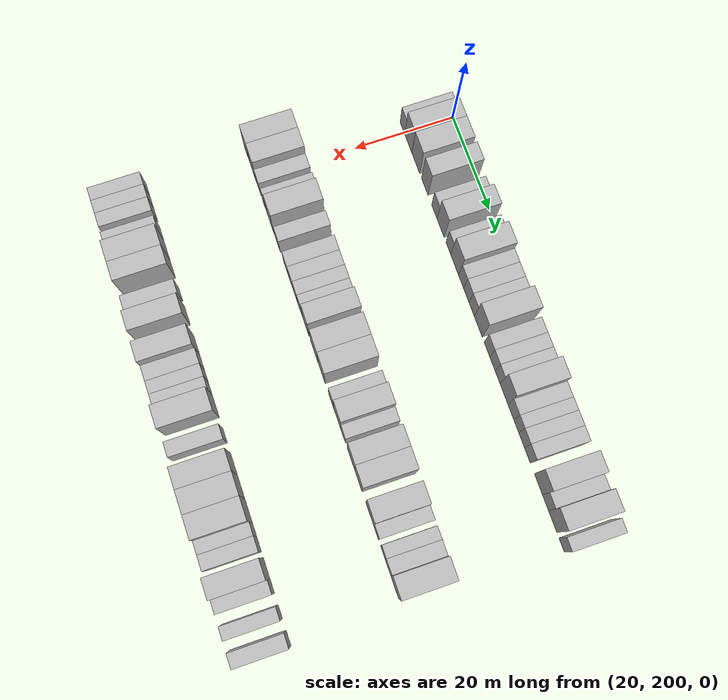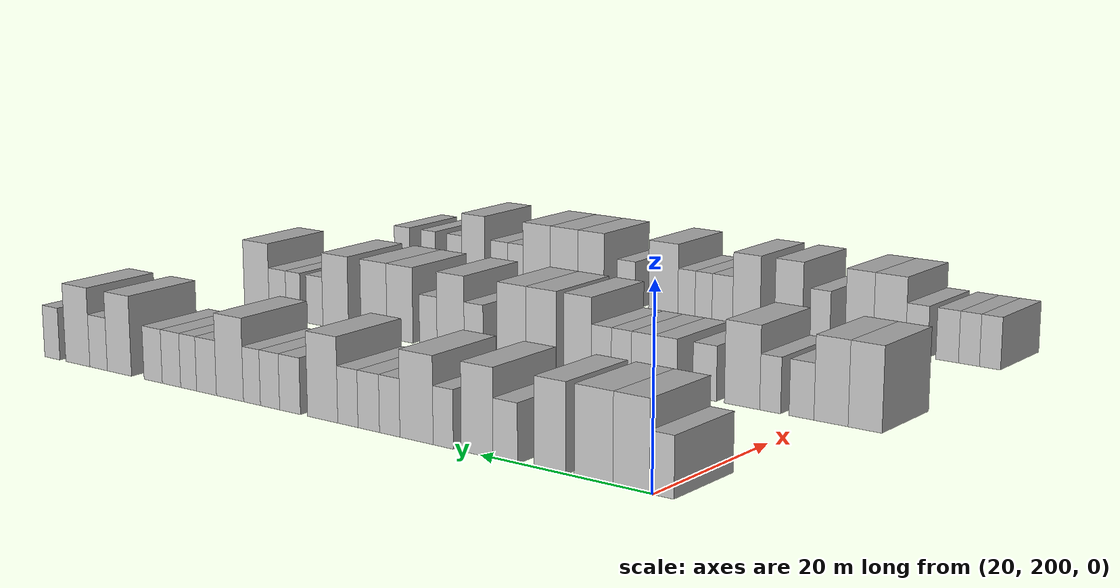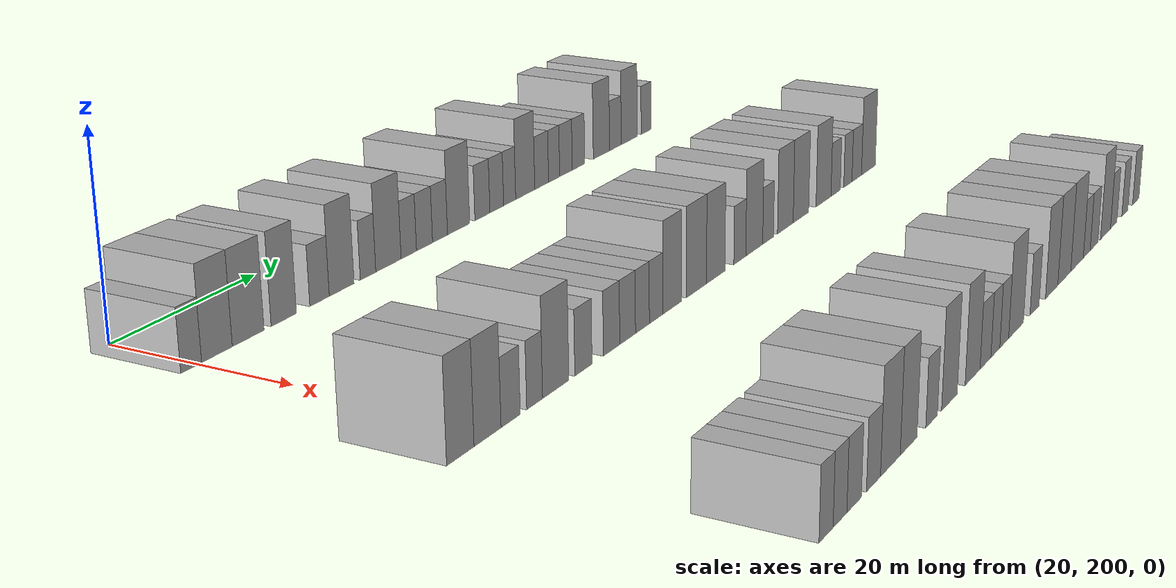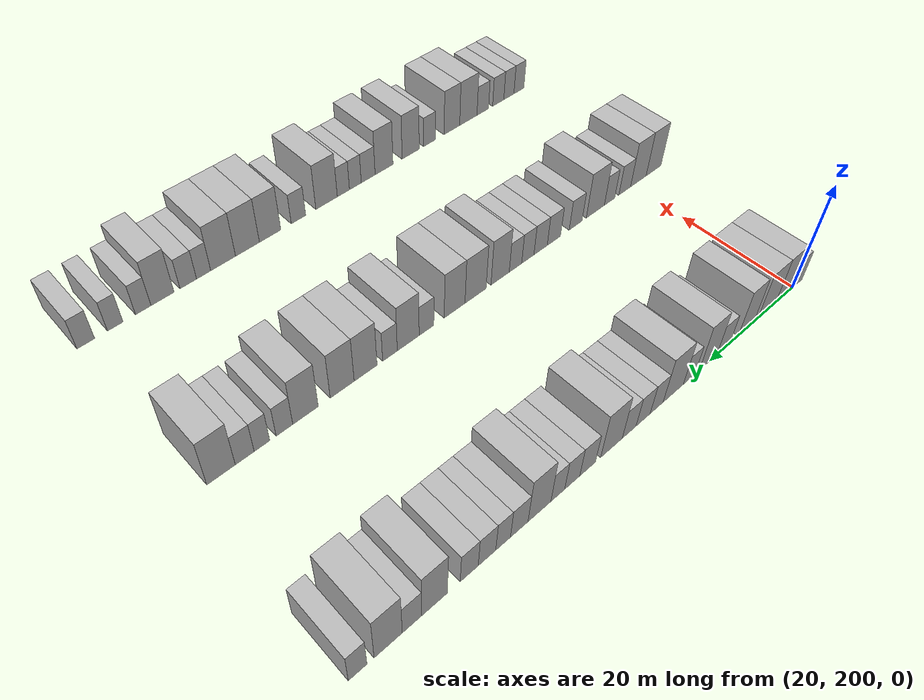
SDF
<sdf version="1.6">
 <world name="default">
  <model name="building_119">
   <static>1</static>
   <pose>25.0000 199.0054 0 0.000000 0.000000 0.000000</pose>
   <link name="link">
    <pose>0 0 3.00 0 0 0</pose>
    <collision name="collision"><geometry><box><size>10.0000 2.6788 6.0000</size></box></geometry></collision>
    <visual name="visual">
     <cast_shadows>0</cast_shadows>
     <geometry><box><size>10.0000 2.6788 6.0000</size></box></geometry>
     <material>
      <script>
       <uri>model://HANNAS_wall/materials/scripts</uri>
       <uri>model://HANNAS_wall/materials/textures</uri>
       <name>vrc/HANNAS_wall</name>
      </script>
     </material>
    </visual>
   </link>
  </model>
  <model name="building_120">
   <static>1</static>
   <pose>25.0000 202.3844 0 0.000000 0.000000 0.000000</pose>
   <link name="link">
    <pose>0 0 4.50 0 0 0</pose>
    <collision name="collision"><geometry><box><size>10.0000 4.0792 9.0000</size></box></geometry></collision>
    <visual name="visual">
     <cast_shadows>0</cast_shadows>
     <geometry><box><size>10.0000 4.0792 9.0000</size></box></geometry>
     <material>
      <script>
       <uri>model://HANNAS_wall/materials/scripts</uri>
       <uri>model://HANNAS_wall/materials/textures</uri>
       <name>vrc/HANNAS_wall</name>
      </script>
     </material>
    </visual>
   </link>
  </model>
  <model name="building_121">
   <static>1</static>
   <pose>25.0000 206.6233 0 0.000000 0.000000 0.000000</pose>
   <link name="link">
    <pose>0 0 4.50 0 0 0</pose>
    <collision name="collision"><geometry><box><size>10.0000 4.3986 9.0000</size></box></geometry></collision>
    <visual name="visual">
     <cast_shadows>0</cast_shadows>
     <geometry><box><size>10.0000 4.3986 9.0000</size></box></geometry>
     <material>
      <script>
       <uri>model://HANNAS_wall/materials/scripts</uri>
       <uri>model://HANNAS_wall/materials/textures</uri>
       <name>vrc/HANNAS_wall</name>
      </script>
     </material>
    </visual>
   </link>
  </model>
  <model name="building_122">
   <static>1</static>
   <pose>25.0000 211.6643 0 0.000000 0.000000 0.000000</pose>
   <link name="link">
    <pose>0 0 4.50 0 0 0</pose>
    <collision name="collision"><geometry><box><size>10.0000 3.6834 9.0000</size></box></geometry></collision>
    <visual name="visual">
     <cast_shadows>0</cast_shadows>
     <geometry><box><size>10.0000 3.6834 9.0000</size></box></geometry>
     <material>
      <script>
       <uri>model://HANNAS_wall/materials/scripts</uri>
       <uri>model://HANNAS_wall/materials/textures</uri>
       <name>vrc/HANNAS_wall</name>
      </script>
     </material>
    </visual>
   </link>
  </model>
  <model name="building_123">
   <static>1</static>
   <pose>25.0000 216.9936 0 0.000000 0.000000 0.000000</pose>
   <link name="link">
    <pose>0 0 3.00 0 0 0</pose>
    <collision name="collision"><geometry><box><size>10.0000 2.9752 6.0000</size></box></geometry></collision>
    <visual name="visual">
     <cast_shadows>0</cast_shadows>
     <geometry><box><size>10.0000 2.9752 6.0000</size></box></geometry>
     <material>
      <script>
       <uri>model://HANNAS_wall/materials/scripts</uri>
       <uri>model://HANNAS_wall/materials/textures</uri>
       <name>vrc/HANNAS_wall</name>
      </script>
     </material>
    </visual>
   </link>
  </model>
  <model name="building_124">
   <static>1</static>
   <pose>25.0000 220.4376 0 0.000000 0.000000 0.000000</pose>
   <link name="link">
    <pose>0 0 4.50 0 0 0</pose>
    <collision name="collision"><geometry><box><size>10.0000 3.9128 9.0000</size></box></geometry></collision>
    <visual name="visual">
     <cast_shadows>0</cast_shadows>
     <geometry><box><size>10.0000 3.9128 9.0000</size></box></geometry>
     <material>
      <script>
       <uri>model://HANNAS_wall/materials/scripts</uri>
       <uri>model://HANNAS_wall/materials/textures</uri>
       <name>vrc/HANNAS_wall</name>
      </script>
     </material>
    </visual>
   </link>
  </model>
  <model name="building_125">
   <static>1</static>
   <pose>25.0000 224.6682 0 0.000000 0.000000 0.000000</pose>
   <link name="link">
    <pose>0 0 3.00 0 0 0</pose>
    <collision name="collision"><geometry><box><size>10.0000 2.5483 6.0000</size></box></geometry></collision>
    <visual name="visual">
     <cast_shadows>0</cast_shadows>
     <geometry><box><size>10.0000 2.5483 6.0000</size></box></geometry>
     <material>
      <script>
       <uri>model://HANNAS_wall/materials/scripts</uri>
       <uri>model://HANNAS_wall/materials/textures</uri>
       <name>vrc/HANNAS_wall</name>
      </script>
     </material>
    </visual>
   </link>
  </model>
  <model name="building_126">
   <static>1</static>
   <pose>25.0000 228.0865 0 0.000000 0.000000 0.000000</pose>
   <link name="link">
    <pose>0 0 4.50 0 0 0</pose>
    <collision name="collision"><geometry><box><size>10.0000 4.2883 9.0000</size></box></geometry></collision>
    <visual name="visual">
     <cast_shadows>0</cast_shadows>
     <geometry><box><size>10.0000 4.2883 9.0000</size></box></geometry>
     <material>
      <script>
       <uri>model://HANNAS_wall/materials/scripts</uri>
       <uri>model://HANNAS_wall/materials/textures</uri>
       <name>vrc/HANNAS_wall</name>
      </script>
     </material>
    </visual>
   </link>
  </model>
  <model name="building_127">
   <static>1</static>
   <pose>25.0000 231.5767 0 0.000000 0.000000 0.000000</pose>
   <link name="link">
    <pose>0 0 3.00 0 0 0</pose>
    <collision name="collision"><geometry><box><size>10.0000 2.6921 6.0000</size></box></geometry></collision>
    <visual name="visual">
     <cast_shadows>0</cast_shadows>
     <geometry><box><size>10.0000 2.6921 6.0000</size></box></geometry>
     <material>
      <script>
       <uri>model://HANNAS_wall/materials/scripts</uri>
       <uri>model://HANNAS_wall/materials/textures</uri>
       <name>vrc/HANNAS_wall</name>
      </script>
     </material>
    </visual>
   </link>
  </model>
  <model name="building_128">
   <static>1</static>
   <pose>25.0000 234.3585 0 0.000000 0.000000 0.000000</pose>
   <link name="link">
    <pose>0 0 3.00 0 0 0</pose>
    <collision name="collision"><geometry><box><size>10.0000 2.8716 6.0000</size></box></geometry></collision>
    <visual name="visual">
     <cast_shadows>0</cast_shadows>
     <geometry><box><size>10.0000 2.8716 6.0000</size></box></geometry>
     <material>
      <script>
       <uri>model://HANNAS_wall/materials/scripts</uri>
       <uri>model://HANNAS_wall/materials/textures</uri>
       <name>vrc/HANNAS_wall</name>
      </script>
     </material>
    </visual>
   </link>
  </model>
  <model name="building_129">
   <static>1</static>
   <pose>25.0000 237.1666 0 0.000000 0.000000 0.000000</pose>
   <link name="link">
    <pose>0 0 3.00 0 0 0</pose>
    <collision name="collision"><geometry><box><size>10.0000 2.7446 6.0000</size></box></geometry></collision>
    <visual name="visual">
     <cast_shadows>0</cast_shadows>
     <geometry><box><size>10.0000 2.7446 6.0000</size></box></geometry>
     <material>
      <script>
       <uri>model://HANNAS_wall/materials/scripts</uri>
       <uri>model://HANNAS_wall/materials/textures</uri>
       <name>vrc/HANNAS_wall</name>
      </script>
     </material>
    </visual>
   </link>
  </model>
  <model name="building_130">
   <static>1</static>
   <pose>25.0000 240.6268 0 0.000000 0.000000 0.000000</pose>
   <link name="link">
    <pose>0 0 4.50 0 0 0</pose>
    <collision name="collision"><geometry><box><size>10.0000 4.1759 9.0000</size></box></geometry></collision>
    <visual name="visual">
     <cast_shadows>0</cast_shadows>
     <geometry><box><size>10.0000 4.1759 9.0000</size></box></geometry>
     <material>
      <script>
       <uri>model://HANNAS_wall/materials/scripts</uri>
       <uri>model://HANNAS_wall/materials/textures</uri>
       <name>vrc/HANNAS_wall</name>
      </script>
     </material>
    </visual>
   </link>
  </model>
  <model name="building_131">
   <static>1</static>
   <pose>25.0000 245.1876 0 0.000000 0.000000 0.000000</pose>
   <link name="link">
    <pose>0 0 3.00 0 0 0</pose>
    <collision name="collision"><geometry><box><size>10.0000 2.9457 6.0000</size></box></geometry></collision>
    <visual name="visual">
     <cast_shadows>0</cast_shadows>
     <geometry><box><size>10.0000 2.9457 6.0000</size></box></geometry>
     <material>
      <script>
       <uri>model://HANNAS_wall/materials/scripts</uri>
       <uri>model://HANNAS_wall/materials/textures</uri>
       <name>vrc/HANNAS_wall</name>
      </script>
     </material>
    </visual>
   </link>
  </model>
  <model name="building_132">
   <static>1</static>
   <pose>25.0000 248.0411 0 0.000000 0.000000 0.000000</pose>
   <link name="link">
    <pose>0 0 3.00 0 0 0</pose>
    <collision name="collision"><geometry><box><size>10.0000 2.7612 6.0000</size></box></geometry></collision>
    <visual name="visual">
     <cast_shadows>0</cast_shadows>
     <geometry><box><size>10.0000 2.7612 6.0000</size></box></geometry>
     <material>
      <script>
       <uri>model://HANNAS_wall/materials/scripts</uri>
       <uri>model://HANNAS_wall/materials/textures</uri>
       <name>vrc/HANNAS_wall</name>
      </script>
     </material>
    </visual>
   </link>
  </model>
  <model name="building_133">
   <static>1</static>
   <pose>25.0000 250.6561 0 0.000000 0.000000 0.000000</pose>
   <link name="link">
    <pose>0 0 3.00 0 0 0</pose>
    <collision name="collision"><geometry><box><size>10.0000 2.4690 6.0000</size></box></geometry></collision>
    <visual name="visual">
     <cast_shadows>0</cast_shadows>
     <geometry><box><size>10.0000 2.4690 6.0000</size></box></geometry>
     <material>
      <script>
       <uri>model://HANNAS_wall/materials/scripts</uri>
       <uri>model://HANNAS_wall/materials/textures</uri>
       <name>vrc/HANNAS_wall</name>
      </script>
     </material>
    </visual>
   </link>
  </model>
  <model name="building_134">
   <static>1</static>
   <pose>25.0000 253.9004 0 0.000000 0.000000 0.000000</pose>
   <link name="link">
    <pose>0 0 4.50 0 0 0</pose>
    <collision name="collision"><geometry><box><size>10.0000 4.0196 9.0000</size></box></geometry></collision>
    <visual name="visual">
     <cast_shadows>0</cast_shadows>
     <geometry><box><size>10.0000 4.0196 9.0000</size></box></geometry>
     <material>
      <script>
       <uri>model://HANNAS_wall/materials/scripts</uri>
       <uri>model://HANNAS_wall/materials/textures</uri>
       <name>vrc/HANNAS_wall</name>
      </script>
     </material>
    </visual>
   </link>
  </model>
  <model name="building_135">
   <static>1</static>
   <pose>25.0000 257.4006 0 0.000000 0.000000 0.000000</pose>
   <link name="link">
    <pose>0 0 3.00 0 0 0</pose>
    <collision name="collision"><geometry><box><size>10.0000 2.9809 6.0000</size></box></geometry></collision>
    <visual name="visual">
     <cast_shadows>0</cast_shadows>
     <geometry><box><size>10.0000 2.9809 6.0000</size></box></geometry>
     <material>
      <script>
       <uri>model://HANNAS_wall/materials/scripts</uri>
       <uri>model://HANNAS_wall/materials/textures</uri>
       <name>vrc/HANNAS_wall</name>
      </script>
     </material>
    </visual>
   </link>
  </model>
  <model name="building_136">
   <static>1</static>
   <pose>25.0000 260.1162 0 0.000000 0.000000 0.000000</pose>
   <link name="link">
    <pose>0 0 3.00 0 0 0</pose>
    <collision name="collision"><geometry><box><size>10.0000 2.4503 6.0000</size></box></geometry></collision>
    <visual name="visual">
     <cast_shadows>0</cast_shadows>
     <geometry><box><size>10.0000 2.4503 6.0000</size></box></geometry>
     <material>
      <script>
       <uri>model://HANNAS_wall/materials/scripts</uri>
       <uri>model://HANNAS_wall/materials/textures</uri>
       <name>vrc/HANNAS_wall</name>
      </script>
     </material>
    </visual>
   </link>
  </model>
  <model name="building_137">
   <static>1</static>
   <pose>25.0000 262.7671 0 0.000000 0.000000 0.000000</pose>
   <link name="link">
    <pose>0 0 3.00 0 0 0</pose>
    <collision name="collision"><geometry><box><size>10.0000 2.8514 6.0000</size></box></geometry></collision>
    <visual name="visual">
     <cast_shadows>0</cast_shadows>
     <geometry><box><size>10.0000 2.8514 6.0000</size></box></geometry>
     <material>
      <script>
       <uri>model://HANNAS_wall/materials/scripts</uri>
       <uri>model://HANNAS_wall/materials/textures</uri>
       <name>vrc/HANNAS_wall</name>
      </script>
     </material>
    </visual>
   </link>
  </model>
  <model name="building_138">
   <static>1</static>
   <pose>25.0000 265.6291 0 0.000000 0.000000 0.000000</pose>
   <link name="link">
    <pose>0 0 3.00 0 0 0</pose>
    <collision name="collision"><geometry><box><size>10.0000 2.8727 6.0000</size></box></geometry></collision>
    <visual name="visual">
     <cast_shadows>0</cast_shadows>
     <geometry><box><size>10.0000 2.8727 6.0000</size></box></geometry>
     <material>
      <script>
       <uri>model://HANNAS_wall/materials/scripts</uri>
       <uri>model://HANNAS_wall/materials/textures</uri>
       <name>vrc/HANNAS_wall</name>
      </script>
     </material>
    </visual>
   </link>
  </model>
  <model name="building_139">
   <static>1</static>
   <pose>25.0000 271.0195 0 0.000000 0.000000 0.000000</pose>
   <link name="link">
    <pose>0 0 4.50 0 0 0</pose>
    <collision name="collision"><geometry><box><size>10.0000 3.9081 9.0000</size></box></geometry></collision>
    <visual name="visual">
     <cast_shadows>0</cast_shadows>
     <geometry><box><size>10.0000 3.9081 9.0000</size></box></geometry>
     <material>
      <script>
       <uri>model://HANNAS_wall/materials/scripts</uri>
       <uri>model://HANNAS_wall/materials/textures</uri>
       <name>vrc/HANNAS_wall</name>
      </script>
     </material>
    </visual>
   </link>
  </model>
  <model name="building_140">
   <static>1</static>
   <pose>25.0000 274.4108 0 0.000000 0.000000 0.000000</pose>
   <link name="link">
    <pose>0 0 3.00 0 0 0</pose>
    <collision name="collision"><geometry><box><size>10.0000 2.8745 6.0000</size></box></geometry></collision>
    <visual name="visual">
     <cast_shadows>0</cast_shadows>
     <geometry><box><size>10.0000 2.8745 6.0000</size></box></geometry>
     <material>
      <script>
       <uri>model://HANNAS_wall/materials/scripts</uri>
       <uri>model://HANNAS_wall/materials/textures</uri>
       <name>vrc/HANNAS_wall</name>
      </script>
     </material>
    </visual>
   </link>
  </model>
  <model name="building_141">
   <static>1</static>
   <pose>25.0000 277.8629 0 0.000000 0.000000 0.000000</pose>
   <link name="link">
    <pose>0 0 4.50 0 0 0</pose>
    <collision name="collision"><geometry><box><size>10.0000 4.0296 9.0000</size></box></geometry></collision>
    <visual name="visual">
     <cast_shadows>0</cast_shadows>
     <geometry><box><size>10.0000 4.0296 9.0000</size></box></geometry>
     <material>
      <script>
       <uri>model://HANNAS_wall/materials/scripts</uri>
       <uri>model://HANNAS_wall/materials/textures</uri>
       <name>vrc/HANNAS_wall</name>
      </script>
     </material>
    </visual>
   </link>
  </model>
  <model name="building_142">
   <static>1</static>
   <pose>25.0000 282.1679 0 0.000000 0.000000 0.000000</pose>
   <link name="link">
    <pose>0 0 3.00 0 0 0</pose>
    <collision name="collision"><geometry><box><size>10.0000 2.5804 6.0000</size></box></geometry></collision>
    <visual name="visual">
     <cast_shadows>0</cast_shadows>
     <geometry><box><size>10.0000 2.5804 6.0000</size></box></geometry>
     <material>
      <script>
       <uri>model://HANNAS_wall/materials/scripts</uri>
       <uri>model://HANNAS_wall/materials/textures</uri>
       <name>vrc/HANNAS_wall</name>
      </script>
     </material>
    </visual>
   </link>
  </model>
  <model name="building_253">
   <static>1</static>
   <pose>55.0000 194.6940 0 0.000000 0.000000 0.000000</pose>
   <link name="link">
    <pose>0 0 4.50 0 0 0</pose>
    <collision name="collision"><geometry><box><size>10.0000 3.8487 9.0000</size></box></geometry></collision>
    <visual name="visual">
     <cast_shadows>0</cast_shadows>
     <geometry><box><size>10.0000 3.8487 9.0000</size></box></geometry>
     <material>
      <script>
       <uri>model://HANNAS_wall/materials/scripts</uri>
       <uri>model://HANNAS_wall/materials/textures</uri>
       <name>vrc/HANNAS_wall</name>
      </script>
     </material>
    </visual>
   </link>
  </model>
  <model name="building_254">
   <static>1</static>
   <pose>55.0000 198.5954 0 0.000000 0.000000 0.000000</pose>
   <link name="link">
    <pose>0 0 4.50 0 0 0</pose>
    <collision name="collision"><geometry><box><size>10.0000 3.9539 9.0000</size></box></geometry></collision>
    <visual name="visual">
     <cast_shadows>0</cast_shadows>
     <geometry><box><size>10.0000 3.9539 9.0000</size></box></geometry>
     <material>
      <script>
       <uri>model://HANNAS_wall/materials/scripts</uri>
       <uri>model://HANNAS_wall/materials/textures</uri>
       <name>vrc/HANNAS_wall</name>
      </script>
     </material>
    </visual>
   </link>
  </model>
  <model name="building_255">
   <static>1</static>
   <pose>55.0000 202.0343 0 0.000000 0.000000 0.000000</pose>
   <link name="link">
    <pose>0 0 3.00 0 0 0</pose>
    <collision name="collision"><geometry><box><size>10.0000 2.9239 6.0000</size></box></geometry></collision>
    <visual name="visual">
     <cast_shadows>0</cast_shadows>
     <geometry><box><size>10.0000 2.9239 6.0000</size></box></geometry>
     <material>
      <script>
       <uri>model://HANNAS_wall/materials/scripts</uri>
       <uri>model://HANNAS_wall/materials/textures</uri>
       <name>vrc/HANNAS_wall</name>
      </script>
     </material>
    </visual>
   </link>
  </model>
  <model name="building_256">
   <static>1</static>
   <pose>55.0000 205.7571 0 0.000000 0.000000 0.000000</pose>
   <link name="link">
    <pose>0 0 3.00 0 0 0</pose>
    <collision name="collision"><geometry><box><size>10.0000 2.5218 6.0000</size></box></geometry></collision>
    <visual name="visual">
     <cast_shadows>0</cast_shadows>
     <geometry><box><size>10.0000 2.5218 6.0000</size></box></geometry>
     <material>
      <script>
       <uri>model://HANNAS_wall/materials/scripts</uri>
       <uri>model://HANNAS_wall/materials/textures</uri>
       <name>vrc/HANNAS_wall</name>
      </script>
     </material>
    </visual>
   </link>
  </model>
  <model name="building_257">
   <static>1</static>
   <pose>55.0000 209.1745 0 0.000000 0.000000 0.000000</pose>
   <link name="link">
    <pose>0 0 4.50 0 0 0</pose>
    <collision name="collision"><geometry><box><size>10.0000 4.3130 9.0000</size></box></geometry></collision>
    <visual name="visual">
     <cast_shadows>0</cast_shadows>
     <geometry><box><size>10.0000 4.3130 9.0000</size></box></geometry>
     <material>
      <script>
       <uri>model://HANNAS_wall/materials/scripts</uri>
       <uri>model://HANNAS_wall/materials/textures</uri>
       <name>vrc/HANNAS_wall</name>
      </script>
     </material>
    </visual>
   </link>
  </model>
  <model name="building_258">
   <static>1</static>
   <pose>55.0000 213.8153 0 0.000000 0.000000 0.000000</pose>
   <link name="link">
    <pose>0 0 3.00 0 0 0</pose>
    <collision name="collision"><geometry><box><size>10.0000 2.9686 6.0000</size></box></geometry></collision>
    <visual name="visual">
     <cast_shadows>0</cast_shadows>
     <geometry><box><size>10.0000 2.9686 6.0000</size></box></geometry>
     <material>
      <script>
       <uri>model://HANNAS_wall/materials/scripts</uri>
       <uri>model://HANNAS_wall/materials/textures</uri>
       <name>vrc/HANNAS_wall</name>
      </script>
     </material>
    </visual>
   </link>
  </model>
  <model name="building_259">
   <static>1</static>
   <pose>55.0000 218.7869 0 0.000000 0.000000 0.000000</pose>
   <link name="link">
    <pose>0 0 3.00 0 0 0</pose>
    <collision name="collision"><geometry><box><size>10.0000 2.9747 6.0000</size></box></geometry></collision>
    <visual name="visual">
     <cast_shadows>0</cast_shadows>
     <geometry><box><size>10.0000 2.9747 6.0000</size></box></geometry>
     <material>
      <script>
       <uri>model://HANNAS_wall/materials/scripts</uri>
       <uri>model://HANNAS_wall/materials/textures</uri>
       <name>vrc/HANNAS_wall</name>
      </script>
     </material>
    </visual>
   </link>
  </model>
  <model name="building_260">
   <static>1</static>
   <pose>55.0000 221.7398 0 0.000000 0.000000 0.000000</pose>
   <link name="link">
    <pose>0 0 3.00 0 0 0</pose>
    <collision name="collision"><geometry><box><size>10.0000 2.9310 6.0000</size></box></geometry></collision>
    <visual name="visual">
     <cast_shadows>0</cast_shadows>
     <geometry><box><size>10.0000 2.9310 6.0000</size></box></geometry>
     <material>
      <script>
       <uri>model://HANNAS_wall/materials/scripts</uri>
       <uri>model://HANNAS_wall/materials/textures</uri>
       <name>vrc/HANNAS_wall</name>
      </script>
     </material>
    </visual>
   </link>
  </model>
  <model name="building_261">
   <static>1</static>
   <pose>55.0000 224.5340 0 0.000000 0.000000 0.000000</pose>
   <link name="link">
    <pose>0 0 3.00 0 0 0</pose>
    <collision name="collision"><geometry><box><size>10.0000 2.6574 6.0000</size></box></geometry></collision>
    <visual name="visual">
     <cast_shadows>0</cast_shadows>
     <geometry><box><size>10.0000 2.6574 6.0000</size></box></geometry>
     <material>
      <script>
       <uri>model://HANNAS_wall/materials/scripts</uri>
       <uri>model://HANNAS_wall/materials/textures</uri>
       <name>vrc/HANNAS_wall</name>
      </script>
     </material>
    </visual>
   </link>
  </model>
  <model name="building_262">
   <static>1</static>
   <pose>55.0000 227.1866 0 0.000000 0.000000 0.000000</pose>
   <link name="link">
    <pose>0 0 3.00 0 0 0</pose>
    <collision name="collision"><geometry><box><size>10.0000 2.6479 6.0000</size></box></geometry></collision>
    <visual name="visual">
     <cast_shadows>0</cast_shadows>
     <geometry><box><size>10.0000 2.6479 6.0000</size></box></geometry>
     <material>
      <script>
       <uri>model://HANNAS_wall/materials/scripts</uri>
       <uri>model://HANNAS_wall/materials/textures</uri>
       <name>vrc/HANNAS_wall</name>
      </script>
     </material>
    </visual>
   </link>
  </model>
  <model name="building_263">
   <static>1</static>
   <pose>55.0000 230.4162 0 0.000000 0.000000 0.000000</pose>
   <link name="link">
    <pose>0 0 4.50 0 0 0</pose>
    <collision name="collision"><geometry><box><size>10.0000 3.8113 9.0000</size></box></geometry></collision>
    <visual name="visual">
     <cast_shadows>0</cast_shadows>
     <geometry><box><size>10.0000 3.8113 9.0000</size></box></geometry>
     <material>
      <script>
       <uri>model://HANNAS_wall/materials/scripts</uri>
       <uri>model://HANNAS_wall/materials/textures</uri>
       <name>vrc/HANNAS_wall</name>
      </script>
     </material>
    </visual>
   </link>
  </model>
  <model name="building_264">
   <static>1</static>
   <pose>55.0000 235.4519 0 0.000000 0.000000 0.000000</pose>
   <link name="link">
    <pose>0 0 4.50 0 0 0</pose>
    <collision name="collision"><geometry><box><size>10.0000 4.2599 9.0000</size></box></geometry></collision>
    <visual name="visual">
     <cast_shadows>0</cast_shadows>
     <geometry><box><size>10.0000 4.2599 9.0000</size></box></geometry>
     <material>
      <script>
       <uri>model://HANNAS_wall/materials/scripts</uri>
       <uri>model://HANNAS_wall/materials/textures</uri>
       <name>vrc/HANNAS_wall</name>
      </script>
     </material>
    </visual>
   </link>
  </model>
  <model name="building_265">
   <static>1</static>
   <pose>55.0000 239.6268 0 0.000000 0.000000 0.000000</pose>
   <link name="link">
    <pose>0 0 4.50 0 0 0</pose>
    <collision name="collision"><geometry><box><size>10.0000 4.0900 9.0000</size></box></geometry></collision>
    <visual name="visual">
     <cast_shadows>0</cast_shadows>
     <geometry><box><size>10.0000 4.0900 9.0000</size></box></geometry>
     <material>
      <script>
       <uri>model://HANNAS_wall/materials/scripts</uri>
       <uri>model://HANNAS_wall/materials/textures</uri>
       <name>vrc/HANNAS_wall</name>
      </script>
     </material>
    </visual>
   </link>
  </model>
  <model name="building_266">
   <static>1</static>
   <pose>55.0000 245.0569 0 0.000000 0.000000 0.000000</pose>
   <link name="link">
    <pose>0 0 3.00 0 0 0</pose>
    <collision name="collision"><geometry><box><size>10.0000 2.7700 6.0000</size></box></geometry></collision>
    <visual name="visual">
     <cast_shadows>0</cast_shadows>
     <geometry><box><size>10.0000 2.7700 6.0000</size></box></geometry>
     <material>
      <script>
       <uri>model://HANNAS_wall/materials/scripts</uri>
       <uri>model://HANNAS_wall/materials/textures</uri>
       <name>vrc/HANNAS_wall</name>
      </script>
     </material>
    </visual>
   </link>
  </model>
  <model name="building_267">
   <static>1</static>
   <pose>55.0000 248.4643 0 0.000000 0.000000 0.000000</pose>
   <link name="link">
    <pose>0 0 4.50 0 0 0</pose>
    <collision name="collision"><geometry><box><size>10.0000 4.0448 9.0000</size></box></geometry></collision>
    <visual name="visual">
     <cast_shadows>0</cast_shadows>
     <geometry><box><size>10.0000 4.0448 9.0000</size></box></geometry>
     <material>
      <script>
       <uri>model://HANNAS_wall/materials/scripts</uri>
       <uri>model://HANNAS_wall/materials/textures</uri>
       <name>vrc/HANNAS_wall</name>
      </script>
     </material>
    </visual>
   </link>
  </model>
  <model name="building_268">
   <static>1</static>
   <pose>55.0000 251.8089 0 0.000000 0.000000 0.000000</pose>
   <link name="link">
    <pose>0 0 3.00 0 0 0</pose>
    <collision name="collision"><geometry><box><size>10.0000 2.6444 6.0000</size></box></geometry></collision>
    <visual name="visual">
     <cast_shadows>0</cast_shadows>
     <geometry><box><size>10.0000 2.6444 6.0000</size></box></geometry>
     <material>
      <script>
       <uri>model://HANNAS_wall/materials/scripts</uri>
       <uri>model://HANNAS_wall/materials/textures</uri>
       <name>vrc/HANNAS_wall</name>
      </script>
     </material>
    </visual>
   </link>
  </model>
  <model name="building_269">
   <static>1</static>
   <pose>55.0000 256.1340 0 0.000000 0.000000 0.000000</pose>
   <link name="link">
    <pose>0 0 4.50 0 0 0</pose>
    <collision name="collision"><geometry><box><size>10.0000 4.0057 9.0000</size></box></geometry></collision>
    <visual name="visual">
     <cast_shadows>0</cast_shadows>
     <geometry><box><size>10.0000 4.0057 9.0000</size></box></geometry>
     <material>
      <script>
       <uri>model://HANNAS_wall/materials/scripts</uri>
       <uri>model://HANNAS_wall/materials/textures</uri>
       <name>vrc/HANNAS_wall</name>
      </script>
     </material>
    </visual>
   </link>
  </model>
  <model name="building_270">
   <static>1</static>
   <pose>55.0000 260.1773 0 0.000000 0.000000 0.000000</pose>
   <link name="link">
    <pose>0 0 4.50 0 0 0</pose>
    <collision name="collision"><geometry><box><size>10.0000 4.0809 9.0000</size></box></geometry></collision>
    <visual name="visual">
     <cast_shadows>0</cast_shadows>
     <geometry><box><size>10.0000 4.0809 9.0000</size></box></geometry>
     <material>
      <script>
       <uri>model://HANNAS_wall/materials/scripts</uri>
       <uri>model://HANNAS_wall/materials/textures</uri>
       <name>vrc/HANNAS_wall</name>
      </script>
     </material>
    </visual>
   </link>
  </model>
  <model name="building_271">
   <static>1</static>
   <pose>55.0000 266.2925 0 0.000000 0.000000 0.000000</pose>
   <link name="link">
    <pose>0 0 4.50 0 0 0</pose>
    <collision name="collision"><geometry><box><size>10.0000 4.1496 9.0000</size></box></geometry></collision>
    <visual name="visual">
     <cast_shadows>0</cast_shadows>
     <geometry><box><size>10.0000 4.1496 9.0000</size></box></geometry>
     <material>
      <script>
       <uri>model://HANNAS_wall/materials/scripts</uri>
       <uri>model://HANNAS_wall/materials/textures</uri>
       <name>vrc/HANNAS_wall</name>
      </script>
     </material>
    </visual>
   </link>
  </model>
  <model name="building_272">
   <static>1</static>
   <pose>55.0000 269.6917 0 0.000000 0.000000 0.000000</pose>
   <link name="link">
    <pose>0 0 3.00 0 0 0</pose>
    <collision name="collision"><geometry><box><size>10.0000 2.6486 6.0000</size></box></geometry></collision>
    <visual name="visual">
     <cast_shadows>0</cast_shadows>
     <geometry><box><size>10.0000 2.6486 6.0000</size></box></geometry>
     <material>
      <script>
       <uri>model://HANNAS_wall/materials/scripts</uri>
       <uri>model://HANNAS_wall/materials/textures</uri>
       <name>vrc/HANNAS_wall</name>
      </script>
     </material>
    </visual>
   </link>
  </model>
  <model name="building_273">
   <static>1</static>
   <pose>55.0000 273.2210 0 0.000000 0.000000 0.000000</pose>
   <link name="link">
    <pose>0 0 3.00 0 0 0</pose>
    <collision name="collision"><geometry><box><size>10.0000 2.4102 6.0000</size></box></geometry></collision>
    <visual name="visual">
     <cast_shadows>0</cast_shadows>
     <geometry><box><size>10.0000 2.4102 6.0000</size></box></geometry>
     <material>
      <script>
       <uri>model://HANNAS_wall/materials/scripts</uri>
       <uri>model://HANNAS_wall/materials/textures</uri>
       <name>vrc/HANNAS_wall</name>
      </script>
     </material>
    </visual>
   </link>
  </model>
  <model name="building_274">
   <static>1</static>
   <pose>55.0000 275.8575 0 0.000000 0.000000 0.000000</pose>
   <link name="link">
    <pose>0 0 3.00 0 0 0</pose>
    <collision name="collision"><geometry><box><size>10.0000 2.8628 6.0000</size></box></geometry></collision>
    <visual name="visual">
     <cast_shadows>0</cast_shadows>
     <geometry><box><size>10.0000 2.8628 6.0000</size></box></geometry>
     <material>
      <script>
       <uri>model://HANNAS_wall/materials/scripts</uri>
       <uri>model://HANNAS_wall/materials/textures</uri>
       <name>vrc/HANNAS_wall</name>
      </script>
     </material>
    </visual>
   </link>
  </model>
  <model name="building_275">
   <static>1</static>
   <pose>55.0000 279.4020 0 0.000000 0.000000 0.000000</pose>
   <link name="link">
    <pose>0 0 4.50 0 0 0</pose>
    <collision name="collision"><geometry><box><size>10.0000 4.2262 9.0000</size></box></geometry></collision>
    <visual name="visual">
     <cast_shadows>0</cast_shadows>
     <geometry><box><size>10.0000 4.2262 9.0000</size></box></geometry>
     <material>
      <script>
       <uri>model://HANNAS_wall/materials/scripts</uri>
       <uri>model://HANNAS_wall/materials/textures</uri>
       <name>vrc/HANNAS_wall</name>
      </script>
     </material>
    </visual>
   </link>
  </model>
  <model name="building_402">
   <static>1</static>
   <pose>85.0000 195.4533 0 0.000000 0.000000 0.000000</pose>
   <link name="link">
    <pose>0 0 3.00 0 0 0</pose>
    <collision name="collision"><geometry><box><size>10.0000 2.5619 6.0000</size></box></geometry></collision>
    <visual name="visual">
     <cast_shadows>0</cast_shadows>
     <geometry><box><size>10.0000 2.5619 6.0000</size></box></geometry>
     <material>
      <script>
       <uri>model://HANNAS_wall/materials/scripts</uri>
       <uri>model://HANNAS_wall/materials/textures</uri>
       <name>vrc/HANNAS_wall</name>
      </script>
     </material>
    </visual>
   </link>
  </model>
  <model name="building_403">
   <static>1</static>
   <pose>85.0000 198.0214 0 0.000000 0.000000 0.000000</pose>
   <link name="link">
    <pose>0 0 3.00 0 0 0</pose>
    <collision name="collision"><geometry><box><size>10.0000 2.5743 6.0000</size></box></geometry></collision>
    <visual name="visual">
     <cast_shadows>0</cast_shadows>
     <geometry><box><size>10.0000 2.5743 6.0000</size></box></geometry>
     <material>
      <script>
       <uri>model://HANNAS_wall/materials/scripts</uri>
       <uri>model://HANNAS_wall/materials/textures</uri>
       <name>vrc/HANNAS_wall</name>
      </script>
     </material>
    </visual>
   </link>
  </model>
  <model name="building_404">
   <static>1</static>
   <pose>85.0000 200.7131 0 0.000000 0.000000 0.000000</pose>
   <link name="link">
    <pose>0 0 3.00 0 0 0</pose>
    <collision name="collision"><geometry><box><size>10.0000 2.8090 6.0000</size></box></geometry></collision>
    <visual name="visual">
     <cast_shadows>0</cast_shadows>
     <geometry><box><size>10.0000 2.8090 6.0000</size></box></geometry>
     <material>
      <script>
       <uri>model://HANNAS_wall/materials/scripts</uri>
       <uri>model://HANNAS_wall/materials/textures</uri>
       <name>vrc/HANNAS_wall</name>
      </script>
     </material>
    </visual>
   </link>
  </model>
  <model name="building_405">
   <static>1</static>
   <pose>85.0000 204.5391 0 0.000000 0.000000 0.000000</pose>
   <link name="link">
    <pose>0 0 3.00 0 0 0</pose>
    <collision name="collision"><geometry><box><size>10.0000 2.8430 6.0000</size></box></geometry></collision>
    <visual name="visual">
     <cast_shadows>0</cast_shadows>
     <geometry><box><size>10.0000 2.8430 6.0000</size></box></geometry>
     <material>
      <script>
       <uri>model://HANNAS_wall/materials/scripts</uri>
       <uri>model://HANNAS_wall/materials/textures</uri>
       <name>vrc/HANNAS_wall</name>
      </script>
     </material>
    </visual>
   </link>
  </model>
  <model name="building_406">
   <static>1</static>
   <pose>85.0000 208.0431 0 0.000000 0.000000 0.000000</pose>
   <link name="link">
    <pose>0 0 4.50 0 0 0</pose>
    <collision name="collision"><geometry><box><size>10.0000 4.1652 9.0000</size></box></geometry></collision>
    <visual name="visual">
     <cast_shadows>0</cast_shadows>
     <geometry><box><size>10.0000 4.1652 9.0000</size></box></geometry>
     <material>
      <script>
       <uri>model://HANNAS_wall/materials/scripts</uri>
       <uri>model://HANNAS_wall/materials/textures</uri>
       <name>vrc/HANNAS_wall</name>
      </script>
     </material>
    </visual>
   </link>
  </model>
  <model name="building_407">
   <static>1</static>
   <pose>85.0000 211.9686 0 0.000000 0.000000 0.000000</pose>
   <link name="link">
    <pose>0 0 4.50 0 0 0</pose>
    <collision name="collision"><geometry><box><size>10.0000 3.6857 9.0000</size></box></geometry></collision>
    <visual name="visual">
     <cast_shadows>0</cast_shadows>
     <geometry><box><size>10.0000 3.6857 9.0000</size></box></geometry>
     <material>
      <script>
       <uri>model://HANNAS_wall/materials/scripts</uri>
       <uri>model://HANNAS_wall/materials/textures</uri>
       <name>vrc/HANNAS_wall</name>
      </script>
     </material>
    </visual>
   </link>
  </model>
  <model name="building_408">
   <static>1</static>
   <pose>85.0000 217.1687 0 0.000000 0.000000 0.000000</pose>
   <link name="link">
    <pose>0 0 3.00 0 0 0</pose>
    <collision name="collision"><geometry><box><size>10.0000 2.7145 6.0000</size></box></geometry></collision>
    <visual name="visual">
     <cast_shadows>0</cast_shadows>
     <geometry><box><size>10.0000 2.7145 6.0000</size></box></geometry>
     <material>
      <script>
       <uri>model://HANNAS_wall/materials/scripts</uri>
       <uri>model://HANNAS_wall/materials/textures</uri>
       <name>vrc/HANNAS_wall</name>
      </script>
     </material>
    </visual>
   </link>
  </model>
  <model name="building_409">
   <static>1</static>
   <pose>85.0000 221.4344 0 0.000000 0.000000 0.000000</pose>
   <link name="link">
    <pose>0 0 4.50 0 0 0</pose>
    <collision name="collision"><geometry><box><size>10.0000 3.8169 9.0000</size></box></geometry></collision>
    <visual name="visual">
     <cast_shadows>0</cast_shadows>
     <geometry><box><size>10.0000 3.8169 9.0000</size></box></geometry>
     <material>
      <script>
       <uri>model://HANNAS_wall/materials/scripts</uri>
       <uri>model://HANNAS_wall/materials/textures</uri>
       <name>vrc/HANNAS_wall</name>
      </script>
     </material>
    </visual>
   </link>
  </model>
  <model name="building_410">
   <static>1</static>
   <pose>85.0000 227.2763 0 0.000000 0.000000 0.000000</pose>
   <link name="link">
    <pose>0 0 4.50 0 0 0</pose>
    <collision name="collision"><geometry><box><size>10.0000 3.8668 9.0000</size></box></geometry></collision>
    <visual name="visual">
     <cast_shadows>0</cast_shadows>
     <geometry><box><size>10.0000 3.8668 9.0000</size></box></geometry>
     <material>
      <script>
       <uri>model://HANNAS_wall/materials/scripts</uri>
       <uri>model://HANNAS_wall/materials/textures</uri>
       <name>vrc/HANNAS_wall</name>
      </script>
     </material>
    </visual>
   </link>
  </model>
  <model name="building_411">
   <static>1</static>
   <pose>85.0000 230.6781 0 0.000000 0.000000 0.000000</pose>
   <link name="link">
    <pose>0 0 3.00 0 0 0</pose>
    <collision name="collision"><geometry><box><size>10.0000 2.9369 6.0000</size></box></geometry></collision>
    <visual name="visual">
     <cast_shadows>0</cast_shadows>
     <geometry><box><size>10.0000 2.9369 6.0000</size></box></geometry>
     <material>
      <script>
       <uri>model://HANNAS_wall/materials/scripts</uri>
       <uri>model://HANNAS_wall/materials/textures</uri>
       <name>vrc/HANNAS_wall</name>
      </script>
     </material>
    </visual>
   </link>
  </model>
  <model name="building_412">
   <static>1</static>
   <pose>85.0000 233.3770 0 0.000000 0.000000 0.000000</pose>
   <link name="link">
    <pose>0 0 3.00 0 0 0</pose>
    <collision name="collision"><geometry><box><size>10.0000 2.4610 6.0000</size></box></geometry></collision>
    <visual name="visual">
     <cast_shadows>0</cast_shadows>
     <geometry><box><size>10.0000 2.4610 6.0000</size></box></geometry>
     <material>
      <script>
       <uri>model://HANNAS_wall/materials/scripts</uri>
       <uri>model://HANNAS_wall/materials/textures</uri>
       <name>vrc/HANNAS_wall</name>
      </script>
     </material>
    </visual>
   </link>
  </model>
  <model name="building_413">
   <static>1</static>
   <pose>85.0000 235.8560 0 0.000000 0.000000 0.000000</pose>
   <link name="link">
    <pose>0 0 3.00 0 0 0</pose>
    <collision name="collision"><geometry><box><size>10.0000 2.4970 6.0000</size></box></geometry></collision>
    <visual name="visual">
     <cast_shadows>0</cast_shadows>
     <geometry><box><size>10.0000 2.4970 6.0000</size></box></geometry>
     <material>
      <script>
       <uri>model://HANNAS_wall/materials/scripts</uri>
       <uri>model://HANNAS_wall/materials/textures</uri>
       <name>vrc/HANNAS_wall</name>
      </script>
     </material>
    </visual>
   </link>
  </model>
  <model name="building_414">
   <static>1</static>
   <pose>85.0000 239.2681 0 0.000000 0.000000 0.000000</pose>
   <link name="link">
    <pose>0 0 4.50 0 0 0</pose>
    <collision name="collision"><geometry><box><size>10.0000 4.3271 9.0000</size></box></geometry></collision>
    <visual name="visual">
     <cast_shadows>0</cast_shadows>
     <geometry><box><size>10.0000 4.3271 9.0000</size></box></geometry>
     <material>
      <script>
       <uri>model://HANNAS_wall/materials/scripts</uri>
       <uri>model://HANNAS_wall/materials/textures</uri>
       <name>vrc/HANNAS_wall</name>
      </script>
     </material>
    </visual>
   </link>
  </model>
  <model name="building_415">
   <static>1</static>
   <pose>85.0000 244.8420 0 0.000000 0.000000 0.000000</pose>
   <link name="link">
    <pose>0 0 3.00 0 0 0</pose>
    <collision name="collision"><geometry><box><size>10.0000 2.8209 6.0000</size></box></geometry></collision>
    <visual name="visual">
     <cast_shadows>0</cast_shadows>
     <geometry><box><size>10.0000 2.8209 6.0000</size></box></geometry>
     <material>
      <script>
       <uri>model://HANNAS_wall/materials/scripts</uri>
       <uri>model://HANNAS_wall/materials/textures</uri>
       <name>vrc/HANNAS_wall</name>
      </script>
     </material>
    </visual>
   </link>
  </model>
  <model name="building_416">
   <static>1</static>
   <pose>85.0000 250.2665 0 0.000000 0.000000 0.000000</pose>
   <link name="link">
    <pose>0 0 4.50 0 0 0</pose>
    <collision name="collision"><geometry><box><size>10.0000 4.0281 9.0000</size></box></geometry></collision>
    <visual name="visual">
     <cast_shadows>0</cast_shadows>
     <geometry><box><size>10.0000 4.0281 9.0000</size></box></geometry>
     <material>
      <script>
       <uri>model://HANNAS_wall/materials/scripts</uri>
       <uri>model://HANNAS_wall/materials/textures</uri>
       <name>vrc/HANNAS_wall</name>
      </script>
     </material>
    </visual>
   </link>
  </model>
  <model name="building_417">
   <static>1</static>
   <pose>85.0000 254.4710 0 0.000000 0.000000 0.000000</pose>
   <link name="link">
    <pose>0 0 4.50 0 0 0</pose>
    <collision name="collision"><geometry><box><size>10.0000 4.3809 9.0000</size></box></geometry></collision>
    <visual name="visual">
     <cast_shadows>0</cast_shadows>
     <geometry><box><size>10.0000 4.3809 9.0000</size></box></geometry>
     <material>
      <script>
       <uri>model://HANNAS_wall/materials/scripts</uri>
       <uri>model://HANNAS_wall/materials/textures</uri>
       <name>vrc/HANNAS_wall</name>
      </script>
     </material>
    </visual>
   </link>
  </model>
  <model name="building_418">
   <static>1</static>
   <pose>85.0000 258.8741 0 0.000000 0.000000 0.000000</pose>
   <link name="link">
    <pose>0 0 4.50 0 0 0</pose>
    <collision name="collision"><geometry><box><size>10.0000 4.4252 9.0000</size></box></geometry></collision>
    <visual name="visual">
     <cast_shadows>0</cast_shadows>
     <geometry><box><size>10.0000 4.4252 9.0000</size></box></geometry>
     <material>
      <script>
       <uri>model://HANNAS_wall/materials/scripts</uri>
       <uri>model://HANNAS_wall/materials/textures</uri>
       <name>vrc/HANNAS_wall</name>
      </script>
     </material>
    </visual>
   </link>
  </model>
  <model name="building_419">
   <static>1</static>
   <pose>85.0000 262.3230 0 0.000000 0.000000 0.000000</pose>
   <link name="link">
    <pose>0 0 3.00 0 0 0</pose>
    <collision name="collision"><geometry><box><size>10.0000 2.4727 6.0000</size></box></geometry></collision>
    <visual name="visual">
     <cast_shadows>0</cast_shadows>
     <geometry><box><size>10.0000 2.4727 6.0000</size></box></geometry>
     <material>
      <script>
       <uri>model://HANNAS_wall/materials/scripts</uri>
       <uri>model://HANNAS_wall/materials/textures</uri>
       <name>vrc/HANNAS_wall</name>
      </script>
     </material>
    </visual>
   </link>
  </model>
  <model name="building_420">
   <static>1</static>
   <pose>85.0000 264.9848 0 0.000000 0.000000 0.000000</pose>
   <link name="link">
    <pose>0 0 3.00 0 0 0</pose>
    <collision name="collision"><geometry><box><size>10.0000 2.8507 6.0000</size></box></geometry></collision>
    <visual name="visual">
     <cast_shadows>0</cast_shadows>
     <geometry><box><size>10.0000 2.8507 6.0000</size></box></geometry>
     <material>
      <script>
       <uri>model://HANNAS_wall/materials/scripts</uri>
       <uri>model://HANNAS_wall/materials/textures</uri>
       <name>vrc/HANNAS_wall</name>
      </script>
     </material>
    </visual>
   </link>
  </model>
  <model name="building_421">
   <static>1</static>
   <pose>85.0000 269.3346 0 0.000000 0.000000 0.000000</pose>
   <link name="link">
    <pose>0 0 4.50 0 0 0</pose>
    <collision name="collision"><geometry><box><size>10.0000 3.8489 9.0000</size></box></geometry></collision>
    <visual name="visual">
     <cast_shadows>0</cast_shadows>
     <geometry><box><size>10.0000 3.8489 9.0000</size></box></geometry>
     <material>
      <script>
       <uri>model://HANNAS_wall/materials/scripts</uri>
       <uri>model://HANNAS_wall/materials/textures</uri>
       <name>vrc/HANNAS_wall</name>
      </script>
     </material>
    </visual>
   </link>
  </model>
  <model name="building_422">
   <static>1</static>
   <pose>85.0000 272.5210 0 0.000000 0.000000 0.000000</pose>
   <link name="link">
    <pose>0 0 3.00 0 0 0</pose>
    <collision name="collision"><geometry><box><size>10.0000 2.5239 6.0000</size></box></geometry></collision>
    <visual name="visual">
     <cast_shadows>0</cast_shadows>
     <geometry><box><size>10.0000 2.5239 6.0000</size></box></geometry>
     <material>
      <script>
       <uri>model://HANNAS_wall/materials/scripts</uri>
       <uri>model://HANNAS_wall/materials/textures</uri>
       <name>vrc/HANNAS_wall</name>
      </script>
     </material>
    </visual>
   </link>
  </model>
  <model name="building_423">
   <static>1</static>
   <pose>85.0000 277.0146 0 0.000000 0.000000 0.000000</pose>
   <link name="link">
    <pose>0 0 3.00 0 0 0</pose>
    <collision name="collision"><geometry><box><size>10.0000 2.4633 6.0000</size></box></geometry></collision>
    <visual name="visual">
     <cast_shadows>0</cast_shadows>
     <geometry><box><size>10.0000 2.4633 6.0000</size></box></geometry>
     <material>
      <script>
       <uri>model://HANNAS_wall/materials/scripts</uri>
       <uri>model://HANNAS_wall/materials/textures</uri>
       <name>vrc/HANNAS_wall</name>
      </script>
     </material>
    </visual>
   </link>
  </model>
  <model name="building_424">
   <static>1</static>
   <pose>85.0000 281.6122 0 0.000000 0.000000 0.000000</pose>
   <link name="link">
    <pose>0 0 3.00 0 0 0</pose>
    <collision name="collision"><geometry><box><size>10.0000 2.7319 6.0000</size></box></geometry></collision>
    <visual name="visual">
     <cast_shadows>0</cast_shadows>
     <geometry><box><size>10.0000 2.7319 6.0000</size></box></geometry>
     <material>
      <script>
       <uri>model://HANNAS_wall/materials/scripts</uri>
       <uri>model://HANNAS_wall/materials/textures</uri>
       <name>vrc/HANNAS_wall</name>
      </script>
     </material>
    </visual>
   </link>
  </model>
 </world>
</sdf>
